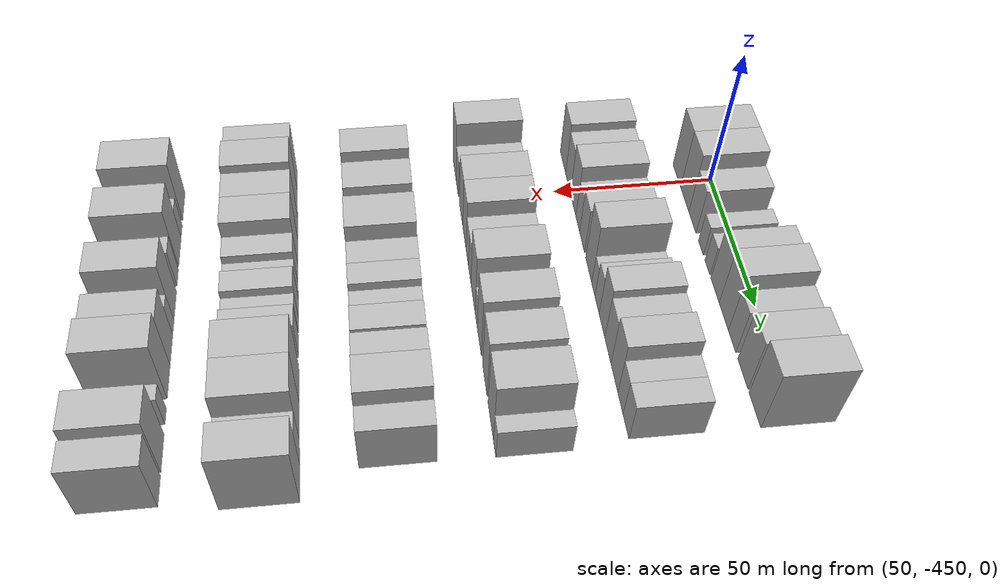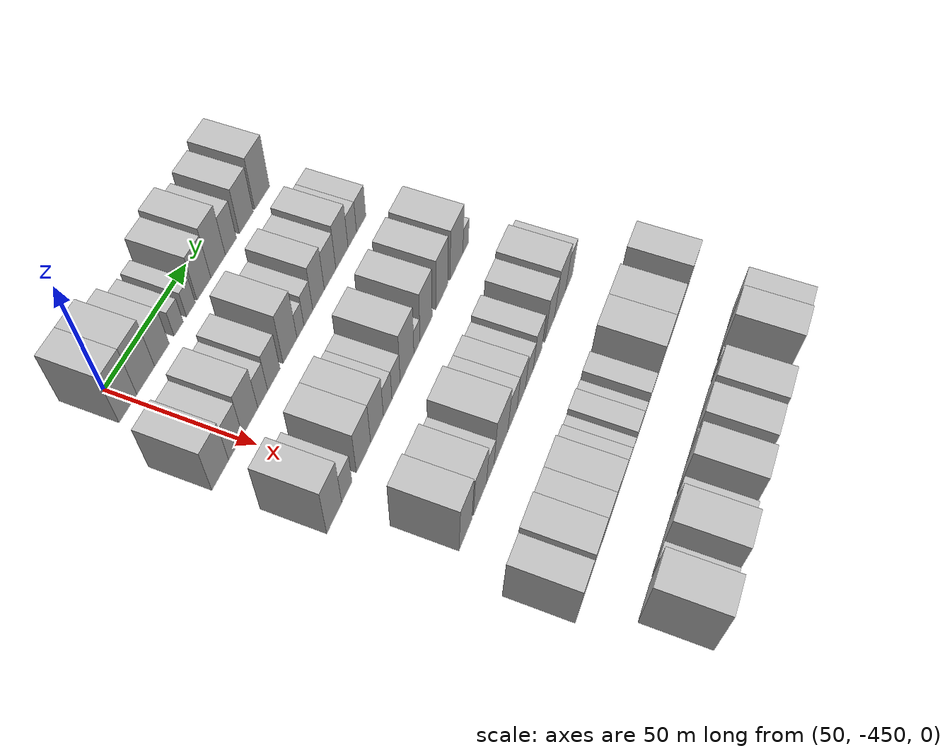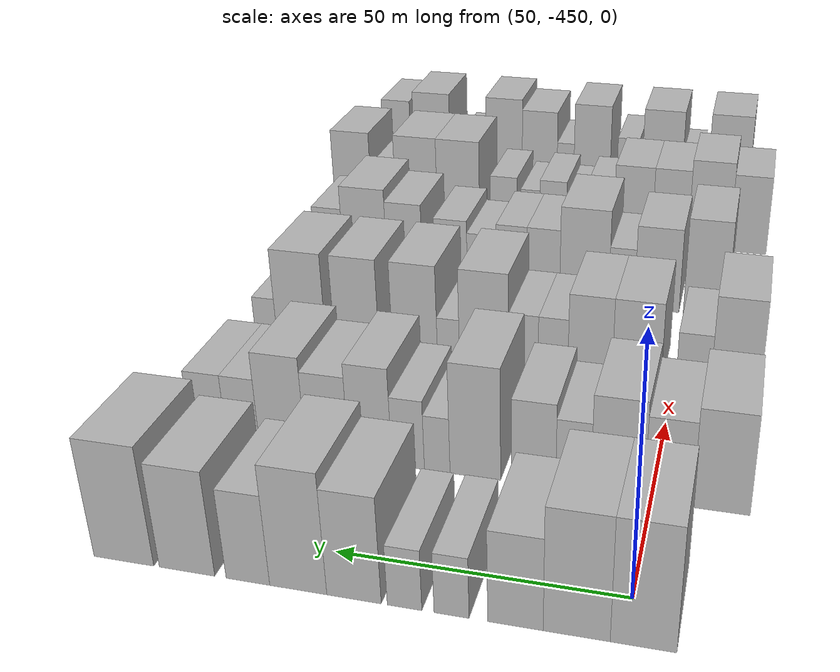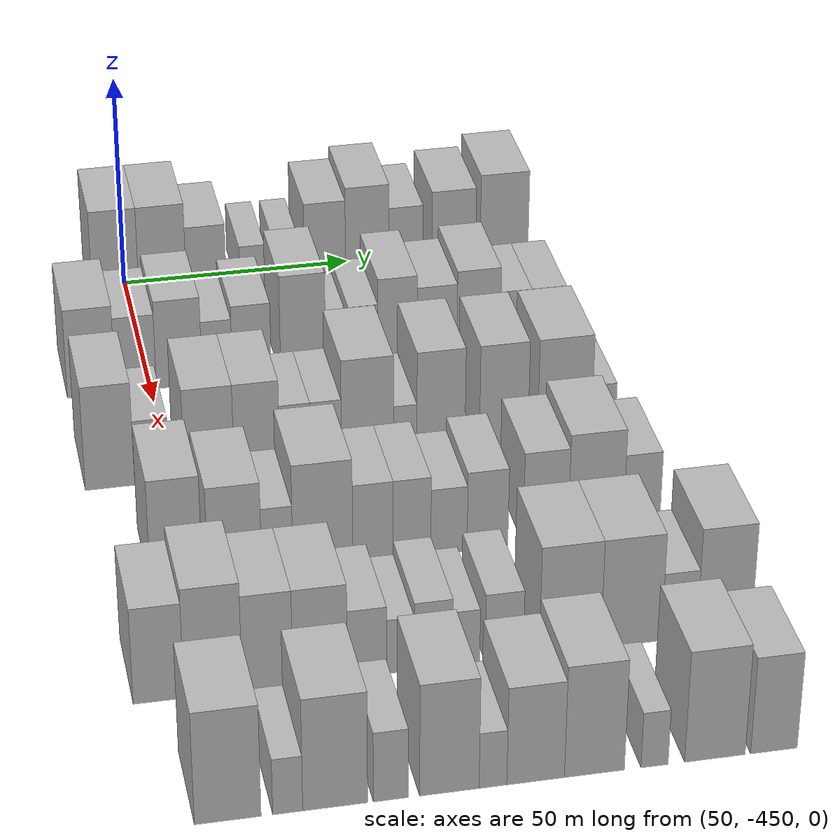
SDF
<sdf version="1.6">
 <world name="default">
  <model name="building_13">
   <static>1</static>
   <pose>50.0000 -453.0136 0 0.000000 0.000000 0.000000</pose>
   <link name="link">
    <pose>0 0 12.00 0 0 0</pose>
    <collision name="collision"><geometry><box><size>20.0000 10.1703 24.0000</size></box></geometry></collision>
    <visual name="visual">
     <cast_shadows>0</cast_shadows>
     <geometry><box><size>20.0000 10.1703 24.0000</size></box></geometry>
     <material>
      <script>
       <uri>model://HANNAS_wall/materials/scripts</uri>
       <uri>model://HANNAS_wall/materials/textures</uri>
       <name>vrc/HANNAS_wall</name>
      </script>
     </material>
    </visual>
   </link>
  </model>
  <model name="building_14">
   <static>1</static>
   <pose>50.0000 -442.7183 0 0.000000 0.000000 0.000000</pose>
   <link name="link">
    <pose>0 0 12.00 0 0 0</pose>
    <collision name="collision"><geometry><box><size>20.0000 10.4204 24.0000</size></box></geometry></collision>
    <visual name="visual">
     <cast_shadows>0</cast_shadows>
     <geometry><box><size>20.0000 10.4204 24.0000</size></box></geometry>
     <material>
      <script>
       <uri>model://HANNAS_wall/materials/scripts</uri>
       <uri>model://HANNAS_wall/materials/textures</uri>
       <name>vrc/HANNAS_wall</name>
      </script>
     </material>
    </visual>
   </link>
  </model>
  <model name="building_15">
   <static>1</static>
   <pose>50.0000 -433.0981 0 0.000000 0.000000 0.000000</pose>
   <link name="link">
    <pose>0 0 9.00 0 0 0</pose>
    <collision name="collision"><geometry><box><size>20.0000 8.8200 18.0000</size></box></geometry></collision>
    <visual name="visual">
     <cast_shadows>0</cast_shadows>
     <geometry><box><size>20.0000 8.8200 18.0000</size></box></geometry>
     <material>
      <script>
       <uri>model://HANNAS_wall/materials/scripts</uri>
       <uri>model://HANNAS_wall/materials/textures</uri>
       <name>vrc/HANNAS_wall</name>
      </script>
     </material>
    </visual>
   </link>
  </model>
  <model name="building_16">
   <static>1</static>
   <pose>50.0000 -422.8419 0 0.000000 0.000000 0.000000</pose>
   <link name="link">
    <pose>0 0 6.00 0 0 0</pose>
    <collision name="collision"><geometry><box><size>20.0000 5.6923 12.0000</size></box></geometry></collision>
    <visual name="visual">
     <cast_shadows>0</cast_shadows>
     <geometry><box><size>20.0000 5.6923 12.0000</size></box></geometry>
     <material>
      <script>
       <uri>model://HANNAS_wall/materials/scripts</uri>
       <uri>model://HANNAS_wall/materials/textures</uri>
       <name>vrc/HANNAS_wall</name>
      </script>
     </material>
    </visual>
   </link>
  </model>
  <model name="building_17">
   <static>1</static>
   <pose>50.0000 -415.1383 0 0.000000 0.000000 0.000000</pose>
   <link name="link">
    <pose>0 0 6.00 0 0 0</pose>
    <collision name="collision"><geometry><box><size>20.0000 5.7149 12.0000</size></box></geometry></collision>
    <visual name="visual">
     <cast_shadows>0</cast_shadows>
     <geometry><box><size>20.0000 5.7149 12.0000</size></box></geometry>
     <material>
      <script>
       <uri>model://HANNAS_wall/materials/scripts</uri>
       <uri>model://HANNAS_wall/materials/textures</uri>
       <name>vrc/HANNAS_wall</name>
      </script>
     </material>
    </visual>
   </link>
  </model>
  <model name="building_18">
   <static>1</static>
   <pose>50.0000 -406.6968 0 0.000000 0.000000 0.000000</pose>
   <link name="link">
    <pose>0 0 10.50 0 0 0</pose>
    <collision name="collision"><geometry><box><size>20.0000 9.1681 21.0000</size></box></geometry></collision>
    <visual name="visual">
     <cast_shadows>0</cast_shadows>
     <geometry><box><size>20.0000 9.1681 21.0000</size></box></geometry>
     <material>
      <script>
       <uri>model://HANNAS_wall/materials/scripts</uri>
       <uri>model://HANNAS_wall/materials/textures</uri>
       <name>vrc/HANNAS_wall</name>
      </script>
     </material>
    </visual>
   </link>
  </model>
  <model name="building_19">
   <static>1</static>
   <pose>50.0000 -397.2139 0 0.000000 0.000000 0.000000</pose>
   <link name="link">
    <pose>0 0 12.00 0 0 0</pose>
    <collision name="collision"><geometry><box><size>20.0000 9.7977 24.0000</size></box></geometry></collision>
    <visual name="visual">
     <cast_shadows>0</cast_shadows>
     <geometry><box><size>20.0000 9.7977 24.0000</size></box></geometry>
     <material>
      <script>
       <uri>model://HANNAS_wall/materials/scripts</uri>
       <uri>model://HANNAS_wall/materials/textures</uri>
       <name>vrc/HANNAS_wall</name>
      </script>
     </material>
    </visual>
   </link>
  </model>
  <model name="building_20">
   <static>1</static>
   <pose>50.0000 -388.5023 0 0.000000 0.000000 0.000000</pose>
   <link name="link">
    <pose>0 0 9.00 0 0 0</pose>
    <collision name="collision"><geometry><box><size>20.0000 7.6254 18.0000</size></box></geometry></collision>
    <visual name="visual">
     <cast_shadows>0</cast_shadows>
     <geometry><box><size>20.0000 7.6254 18.0000</size></box></geometry>
     <material>
      <script>
       <uri>model://HANNAS_wall/materials/scripts</uri>
       <uri>model://HANNAS_wall/materials/textures</uri>
       <name>vrc/HANNAS_wall</name>
      </script>
     </material>
    </visual>
   </link>
  </model>
  <model name="building_21">
   <static>1</static>
   <pose>50.0000 -377.7270 0 0.000000 0.000000 0.000000</pose>
   <link name="link">
    <pose>0 0 10.50 0 0 0</pose>
    <collision name="collision"><geometry><box><size>20.0000 9.9251 21.0000</size></box></geometry></collision>
    <visual name="visual">
     <cast_shadows>0</cast_shadows>
     <geometry><box><size>20.0000 9.9251 21.0000</size></box></geometry>
     <material>
      <script>
       <uri>model://HANNAS_wall/materials/scripts</uri>
       <uri>model://HANNAS_wall/materials/textures</uri>
       <name>vrc/HANNAS_wall</name>
      </script>
     </material>
    </visual>
   </link>
  </model>
  <model name="building_22">
   <static>1</static>
   <pose>50.0000 -366.3055 0 0.000000 0.000000 0.000000</pose>
   <link name="link">
    <pose>0 0 12.00 0 0 0</pose>
    <collision name="collision"><geometry><box><size>20.0000 10.9180 24.0000</size></box></geometry></collision>
    <visual name="visual">
     <cast_shadows>0</cast_shadows>
     <geometry><box><size>20.0000 10.9180 24.0000</size></box></geometry>
     <material>
      <script>
       <uri>model://HANNAS_wall/materials/scripts</uri>
       <uri>model://HANNAS_wall/materials/textures</uri>
       <name>vrc/HANNAS_wall</name>
      </script>
     </material>
    </visual>
   </link>
  </model>
  <model name="building_139">
   <static>1</static>
   <pose>85.0000 -462.3972 0 0.000000 0.000000 0.000000</pose>
   <link name="link">
    <pose>0 0 10.50 0 0 0</pose>
    <collision name="collision"><geometry><box><size>20.0000 10.0601 21.0000</size></box></geometry></collision>
    <visual name="visual">
     <cast_shadows>0</cast_shadows>
     <geometry><box><size>20.0000 10.0601 21.0000</size></box></geometry>
     <material>
      <script>
       <uri>model://HANNAS_wall/materials/scripts</uri>
       <uri>model://HANNAS_wall/materials/textures</uri>
       <name>vrc/HANNAS_wall</name>
      </script>
     </material>
    </visual>
   </link>
  </model>
  <model name="building_140">
   <static>1</static>
   <pose>85.0000 -453.0667 0 0.000000 0.000000 0.000000</pose>
   <link name="link">
    <pose>0 0 9.00 0 0 0</pose>
    <collision name="collision"><geometry><box><size>20.0000 8.6009 18.0000</size></box></geometry></collision>
    <visual name="visual">
     <cast_shadows>0</cast_shadows>
     <geometry><box><size>20.0000 8.6009 18.0000</size></box></geometry>
     <material>
      <script>
       <uri>model://HANNAS_wall/materials/scripts</uri>
       <uri>model://HANNAS_wall/materials/textures</uri>
       <name>vrc/HANNAS_wall</name>
      </script>
     </material>
    </visual>
   </link>
  </model>
  <model name="building_141">
   <static>1</static>
   <pose>85.0000 -443.9411 0 0.000000 0.000000 0.000000</pose>
   <link name="link">
    <pose>0 0 10.50 0 0 0</pose>
    <collision name="collision"><geometry><box><size>20.0000 9.6503 21.0000</size></box></geometry></collision>
    <visual name="visual">
     <cast_shadows>0</cast_shadows>
     <geometry><box><size>20.0000 9.6503 21.0000</size></box></geometry>
     <material>
      <script>
       <uri>model://HANNAS_wall/materials/scripts</uri>
       <uri>model://HANNAS_wall/materials/textures</uri>
       <name>vrc/HANNAS_wall</name>
      </script>
     </material>
    </visual>
   </link>
  </model>
  <model name="building_142">
   <static>1</static>
   <pose>85.0000 -435.9030 0 0.000000 0.000000 0.000000</pose>
   <link name="link">
    <pose>0 0 7.50 0 0 0</pose>
    <collision name="collision"><geometry><box><size>20.0000 6.4260 15.0000</size></box></geometry></collision>
    <visual name="visual">
     <cast_shadows>0</cast_shadows>
     <geometry><box><size>20.0000 6.4260 15.0000</size></box></geometry>
     <material>
      <script>
       <uri>model://HANNAS_wall/materials/scripts</uri>
       <uri>model://HANNAS_wall/materials/textures</uri>
       <name>vrc/HANNAS_wall</name>
      </script>
     </material>
    </visual>
   </link>
  </model>
  <model name="building_143">
   <static>1</static>
   <pose>85.0000 -428.5679 0 0.000000 0.000000 0.000000</pose>
   <link name="link">
    <pose>0 0 9.00 0 0 0</pose>
    <collision name="collision"><geometry><box><size>20.0000 8.2441 18.0000</size></box></geometry></collision>
    <visual name="visual">
     <cast_shadows>0</cast_shadows>
     <geometry><box><size>20.0000 8.2441 18.0000</size></box></geometry>
     <material>
      <script>
       <uri>model://HANNAS_wall/materials/scripts</uri>
       <uri>model://HANNAS_wall/materials/textures</uri>
       <name>vrc/HANNAS_wall</name>
      </script>
     </material>
    </visual>
   </link>
  </model>
  <model name="building_144">
   <static>1</static>
   <pose>85.0000 -417.6438 0 0.000000 0.000000 0.000000</pose>
   <link name="link">
    <pose>0 0 12.00 0 0 0</pose>
    <collision name="collision"><geometry><box><size>20.0000 9.6042 24.0000</size></box></geometry></collision>
    <visual name="visual">
     <cast_shadows>0</cast_shadows>
     <geometry><box><size>20.0000 9.6042 24.0000</size></box></geometry>
     <material>
      <script>
       <uri>model://HANNAS_wall/materials/scripts</uri>
       <uri>model://HANNAS_wall/materials/textures</uri>
       <name>vrc/HANNAS_wall</name>
      </script>
     </material>
    </visual>
   </link>
  </model>
  <model name="building_145">
   <static>1</static>
   <pose>85.0000 -410.3816 0 0.000000 0.000000 0.000000</pose>
   <link name="link">
    <pose>0 0 6.00 0 0 0</pose>
    <collision name="collision"><geometry><box><size>20.0000 4.9201 12.0000</size></box></geometry></collision>
    <visual name="visual">
     <cast_shadows>0</cast_shadows>
     <geometry><box><size>20.0000 4.9201 12.0000</size></box></geometry>
     <material>
      <script>
       <uri>model://HANNAS_wall/materials/scripts</uri>
       <uri>model://HANNAS_wall/materials/textures</uri>
       <name>vrc/HANNAS_wall</name>
      </script>
     </material>
    </visual>
   </link>
  </model>
  <model name="building_146">
   <static>1</static>
   <pose>85.0000 -404.7679 0 0.000000 0.000000 0.000000</pose>
   <link name="link">
    <pose>0 0 7.50 0 0 0</pose>
    <collision name="collision"><geometry><box><size>20.0000 6.3074 15.0000</size></box></geometry></collision>
    <visual name="visual">
     <cast_shadows>0</cast_shadows>
     <geometry><box><size>20.0000 6.3074 15.0000</size></box></geometry>
     <material>
      <script>
       <uri>model://HANNAS_wall/materials/scripts</uri>
       <uri>model://HANNAS_wall/materials/textures</uri>
       <name>vrc/HANNAS_wall</name>
      </script>
     </material>
    </visual>
   </link>
  </model>
  <model name="building_147">
   <static>1</static>
   <pose>85.0000 -397.3944 0 0.000000 0.000000 0.000000</pose>
   <link name="link">
    <pose>0 0 10.50 0 0 0</pose>
    <collision name="collision"><geometry><box><size>20.0000 8.4396 21.0000</size></box></geometry></collision>
    <visual name="visual">
     <cast_shadows>0</cast_shadows>
     <geometry><box><size>20.0000 8.4396 21.0000</size></box></geometry>
     <material>
      <script>
       <uri>model://HANNAS_wall/materials/scripts</uri>
       <uri>model://HANNAS_wall/materials/textures</uri>
       <name>vrc/HANNAS_wall</name>
      </script>
     </material>
    </visual>
   </link>
  </model>
  <model name="building_148">
   <static>1</static>
   <pose>85.0000 -388.8585 0 0.000000 0.000000 0.000000</pose>
   <link name="link">
    <pose>0 0 9.00 0 0 0</pose>
    <collision name="collision"><geometry><box><size>20.0000 8.6321 18.0000</size></box></geometry></collision>
    <visual name="visual">
     <cast_shadows>0</cast_shadows>
     <geometry><box><size>20.0000 8.6321 18.0000</size></box></geometry>
     <material>
      <script>
       <uri>model://HANNAS_wall/materials/scripts</uri>
       <uri>model://HANNAS_wall/materials/textures</uri>
       <name>vrc/HANNAS_wall</name>
      </script>
     </material>
    </visual>
   </link>
  </model>
  <model name="building_149">
   <static>1</static>
   <pose>85.0000 -379.8429 0 0.000000 0.000000 0.000000</pose>
   <link name="link">
    <pose>0 0 10.50 0 0 0</pose>
    <collision name="collision"><geometry><box><size>20.0000 9.3990 21.0000</size></box></geometry></collision>
    <visual name="visual">
     <cast_shadows>0</cast_shadows>
     <geometry><box><size>20.0000 9.3990 21.0000</size></box></geometry>
     <material>
      <script>
       <uri>model://HANNAS_wall/materials/scripts</uri>
       <uri>model://HANNAS_wall/materials/textures</uri>
       <name>vrc/HANNAS_wall</name>
      </script>
     </material>
    </visual>
   </link>
  </model>
  <model name="building_150">
   <static>1</static>
   <pose>85.0000 -371.7738 0 0.000000 0.000000 0.000000</pose>
   <link name="link">
    <pose>0 0 7.50 0 0 0</pose>
    <collision name="collision"><geometry><box><size>20.0000 6.7392 15.0000</size></box></geometry></collision>
    <visual name="visual">
     <cast_shadows>0</cast_shadows>
     <geometry><box><size>20.0000 6.7392 15.0000</size></box></geometry>
     <material>
      <script>
       <uri>model://HANNAS_wall/materials/scripts</uri>
       <uri>model://HANNAS_wall/materials/textures</uri>
       <name>vrc/HANNAS_wall</name>
      </script>
     </material>
    </visual>
   </link>
  </model>
  <model name="building_151">
   <static>1</static>
   <pose>85.0000 -364.6803 0 0.000000 0.000000 0.000000</pose>
   <link name="link">
    <pose>0 0 7.50 0 0 0</pose>
    <collision name="collision"><geometry><box><size>20.0000 7.4479 15.0000</size></box></geometry></collision>
    <visual name="visual">
     <cast_shadows>0</cast_shadows>
     <geometry><box><size>20.0000 7.4479 15.0000</size></box></geometry>
     <material>
      <script>
       <uri>model://HANNAS_wall/materials/scripts</uri>
       <uri>model://HANNAS_wall/materials/textures</uri>
       <name>vrc/HANNAS_wall</name>
      </script>
     </material>
    </visual>
   </link>
  </model>
  <model name="building_273">
   <static>1</static>
   <pose>120.0000 -462.6352 0 0.000000 0.000000 0.000000</pose>
   <link name="link">
    <pose>0 0 12.00 0 0 0</pose>
    <collision name="collision"><geometry><box><size>20.0000 9.8726 24.0000</size></box></geometry></collision>
    <visual name="visual">
     <cast_shadows>0</cast_shadows>
     <geometry><box><size>20.0000 9.8726 24.0000</size></box></geometry>
     <material>
      <script>
       <uri>model://HANNAS_wall/materials/scripts</uri>
       <uri>model://HANNAS_wall/materials/textures</uri>
       <name>vrc/HANNAS_wall</name>
      </script>
     </material>
    </visual>
   </link>
  </model>
  <model name="building_274">
   <static>1</static>
   <pose>120.0000 -454.2096 0 0.000000 0.000000 0.000000</pose>
   <link name="link">
    <pose>0 0 7.50 0 0 0</pose>
    <collision name="collision"><geometry><box><size>20.0000 6.9786 15.0000</size></box></geometry></collision>
    <visual name="visual">
     <cast_shadows>0</cast_shadows>
     <geometry><box><size>20.0000 6.9786 15.0000</size></box></geometry>
     <material>
      <script>
       <uri>model://HANNAS_wall/materials/scripts</uri>
       <uri>model://HANNAS_wall/materials/textures</uri>
       <name>vrc/HANNAS_wall</name>
      </script>
     </material>
    </visual>
   </link>
  </model>
  <model name="building_275">
   <static>1</static>
   <pose>120.0000 -442.7004 0 0.000000 0.000000 0.000000</pose>
   <link name="link">
    <pose>0 0 10.50 0 0 0</pose>
    <collision name="collision"><geometry><box><size>20.0000 10.0397 21.0000</size></box></geometry></collision>
    <visual name="visual">
     <cast_shadows>0</cast_shadows>
     <geometry><box><size>20.0000 10.0397 21.0000</size></box></geometry>
     <material>
      <script>
       <uri>model://HANNAS_wall/materials/scripts</uri>
       <uri>model://HANNAS_wall/materials/textures</uri>
       <name>vrc/HANNAS_wall</name>
      </script>
     </material>
    </visual>
   </link>
  </model>
  <model name="building_276">
   <static>1</static>
   <pose>120.0000 -433.0574 0 0.000000 0.000000 0.000000</pose>
   <link name="link">
    <pose>0 0 10.50 0 0 0</pose>
    <collision name="collision"><geometry><box><size>20.0000 9.2465 21.0000</size></box></geometry></collision>
    <visual name="visual">
     <cast_shadows>0</cast_shadows>
     <geometry><box><size>20.0000 9.2465 21.0000</size></box></geometry>
     <material>
      <script>
       <uri>model://HANNAS_wall/materials/scripts</uri>
       <uri>model://HANNAS_wall/materials/textures</uri>
       <name>vrc/HANNAS_wall</name>
      </script>
     </material>
    </visual>
   </link>
  </model>
  <model name="building_277">
   <static>1</static>
   <pose>120.0000 -425.2995 0 0.000000 0.000000 0.000000</pose>
   <link name="link">
    <pose>0 0 7.50 0 0 0</pose>
    <collision name="collision"><geometry><box><size>20.0000 6.2693 15.0000</size></box></geometry></collision>
    <visual name="visual">
     <cast_shadows>0</cast_shadows>
     <geometry><box><size>20.0000 6.2693 15.0000</size></box></geometry>
     <material>
      <script>
       <uri>model://HANNAS_wall/materials/scripts</uri>
       <uri>model://HANNAS_wall/materials/textures</uri>
       <name>vrc/HANNAS_wall</name>
      </script>
     </material>
    </visual>
   </link>
  </model>
  <model name="building_278">
   <static>1</static>
   <pose>120.0000 -419.0055 0 0.000000 0.000000 0.000000</pose>
   <link name="link">
    <pose>0 0 7.50 0 0 0</pose>
    <collision name="collision"><geometry><box><size>20.0000 6.3186 15.0000</size></box></geometry></collision>
    <visual name="visual">
     <cast_shadows>0</cast_shadows>
     <geometry><box><size>20.0000 6.3186 15.0000</size></box></geometry>
     <material>
      <script>
       <uri>model://HANNAS_wall/materials/scripts</uri>
       <uri>model://HANNAS_wall/materials/textures</uri>
       <name>vrc/HANNAS_wall</name>
      </script>
     </material>
    </visual>
   </link>
  </model>
  <model name="building_279">
   <static>1</static>
   <pose>120.0000 -410.5280 0 0.000000 0.000000 0.000000</pose>
   <link name="link">
    <pose>0 0 12.00 0 0 0</pose>
    <collision name="collision"><geometry><box><size>20.0000 10.6365 24.0000</size></box></geometry></collision>
    <visual name="visual">
     <cast_shadows>0</cast_shadows>
     <geometry><box><size>20.0000 10.6365 24.0000</size></box></geometry>
     <material>
      <script>
       <uri>model://HANNAS_wall/materials/scripts</uri>
       <uri>model://HANNAS_wall/materials/textures</uri>
       <name>vrc/HANNAS_wall</name>
      </script>
     </material>
    </visual>
   </link>
  </model>
  <model name="building_280">
   <static>1</static>
   <pose>120.0000 -402.7994 0 0.000000 0.000000 0.000000</pose>
   <link name="link">
    <pose>0 0 6.00 0 0 0</pose>
    <collision name="collision"><geometry><box><size>20.0000 4.8205 12.0000</size></box></geometry></collision>
    <visual name="visual">
     <cast_shadows>0</cast_shadows>
     <geometry><box><size>20.0000 4.8205 12.0000</size></box></geometry>
     <material>
      <script>
       <uri>model://HANNAS_wall/materials/scripts</uri>
       <uri>model://HANNAS_wall/materials/textures</uri>
       <name>vrc/HANNAS_wall</name>
      </script>
     </material>
    </visual>
   </link>
  </model>
  <model name="building_281">
   <static>1</static>
   <pose>120.0000 -395.4200 0 0.000000 0.000000 0.000000</pose>
   <link name="link">
    <pose>0 0 12.00 0 0 0</pose>
    <collision name="collision"><geometry><box><size>20.0000 9.9383 24.0000</size></box></geometry></collision>
    <visual name="visual">
     <cast_shadows>0</cast_shadows>
     <geometry><box><size>20.0000 9.9383 24.0000</size></box></geometry>
     <material>
      <script>
       <uri>model://HANNAS_wall/materials/scripts</uri>
       <uri>model://HANNAS_wall/materials/textures</uri>
       <name>vrc/HANNAS_wall</name>
      </script>
     </material>
    </visual>
   </link>
  </model>
  <model name="building_282">
   <static>1</static>
   <pose>120.0000 -382.3980 0 0.000000 0.000000 0.000000</pose>
   <link name="link">
    <pose>0 0 12.00 0 0 0</pose>
    <collision name="collision"><geometry><box><size>20.0000 10.1058 24.0000</size></box></geometry></collision>
    <visual name="visual">
     <cast_shadows>0</cast_shadows>
     <geometry><box><size>20.0000 10.1058 24.0000</size></box></geometry>
     <material>
      <script>
       <uri>model://HANNAS_wall/materials/scripts</uri>
       <uri>model://HANNAS_wall/materials/textures</uri>
       <name>vrc/HANNAS_wall</name>
      </script>
     </material>
    </visual>
   </link>
  </model>
  <model name="building_283">
   <static>1</static>
   <pose>120.0000 -369.6993 0 0.000000 0.000000 0.000000</pose>
   <link name="link">
    <pose>0 0 12.00 0 0 0</pose>
    <collision name="collision"><geometry><box><size>20.0000 11.2915 24.0000</size></box></geometry></collision>
    <visual name="visual">
     <cast_shadows>0</cast_shadows>
     <geometry><box><size>20.0000 11.2915 24.0000</size></box></geometry>
     <material>
      <script>
       <uri>model://HANNAS_wall/materials/scripts</uri>
       <uri>model://HANNAS_wall/materials/textures</uri>
       <name>vrc/HANNAS_wall</name>
      </script>
     </material>
    </visual>
   </link>
  </model>
  <model name="building_284">
   <static>1</static>
   <pose>120.0000 -361.5276 0 0.000000 0.000000 0.000000</pose>
   <link name="link">
    <pose>0 0 6.00 0 0 0</pose>
    <collision name="collision"><geometry><box><size>20.0000 5.0519 12.0000</size></box></geometry></collision>
    <visual name="visual">
     <cast_shadows>0</cast_shadows>
     <geometry><box><size>20.0000 5.0519 12.0000</size></box></geometry>
     <material>
      <script>
       <uri>model://HANNAS_wall/materials/scripts</uri>
       <uri>model://HANNAS_wall/materials/textures</uri>
       <name>vrc/HANNAS_wall</name>
      </script>
     </material>
    </visual>
   </link>
  </model>
  <model name="building_399">
   <static>1</static>
   <pose>155.0000 -454.0899 0 0.000000 0.000000 0.000000</pose>
   <link name="link">
    <pose>0 0 12.00 0 0 0</pose>
    <collision name="collision"><geometry><box><size>20.0000 9.9582 24.0000</size></box></geometry></collision>
    <visual name="visual">
     <cast_shadows>0</cast_shadows>
     <geometry><box><size>20.0000 9.9582 24.0000</size></box></geometry>
     <material>
      <script>
       <uri>model://HANNAS_wall/materials/scripts</uri>
       <uri>model://HANNAS_wall/materials/textures</uri>
       <name>vrc/HANNAS_wall</name>
      </script>
     </material>
    </visual>
   </link>
  </model>
  <model name="building_400">
   <static>1</static>
   <pose>155.0000 -442.9154 0 0.000000 0.000000 0.000000</pose>
   <link name="link">
    <pose>0 0 10.50 0 0 0</pose>
    <collision name="collision"><geometry><box><size>20.0000 10.3909 21.0000</size></box></geometry></collision>
    <visual name="visual">
     <cast_shadows>0</cast_shadows>
     <geometry><box><size>20.0000 10.3909 21.0000</size></box></geometry>
     <material>
      <script>
       <uri>model://HANNAS_wall/materials/scripts</uri>
       <uri>model://HANNAS_wall/materials/textures</uri>
       <name>vrc/HANNAS_wall</name>
      </script>
     </material>
    </visual>
   </link>
  </model>
  <model name="building_401">
   <static>1</static>
   <pose>155.0000 -434.7005 0 0.000000 0.000000 0.000000</pose>
   <link name="link">
    <pose>0 0 7.50 0 0 0</pose>
    <collision name="collision"><geometry><box><size>20.0000 6.0390 15.0000</size></box></geometry></collision>
    <visual name="visual">
     <cast_shadows>0</cast_shadows>
     <geometry><box><size>20.0000 6.0390 15.0000</size></box></geometry>
     <material>
      <script>
       <uri>model://HANNAS_wall/materials/scripts</uri>
       <uri>model://HANNAS_wall/materials/textures</uri>
       <name>vrc/HANNAS_wall</name>
      </script>
     </material>
    </visual>
   </link>
  </model>
  <model name="building_402">
   <static>1</static>
   <pose>155.0000 -425.8750 0 0.000000 0.000000 0.000000</pose>
   <link name="link">
    <pose>0 0 12.00 0 0 0</pose>
    <collision name="collision"><geometry><box><size>20.0000 11.6121 24.0000</size></box></geometry></collision>
    <visual name="visual">
     <cast_shadows>0</cast_shadows>
     <geometry><box><size>20.0000 11.6121 24.0000</size></box></geometry>
     <material>
      <script>
       <uri>model://HANNAS_wall/materials/scripts</uri>
       <uri>model://HANNAS_wall/materials/textures</uri>
       <name>vrc/HANNAS_wall</name>
      </script>
     </material>
    </visual>
   </link>
  </model>
  <model name="building_403">
   <static>1</static>
   <pose>155.0000 -416.1184 0 0.000000 0.000000 0.000000</pose>
   <link name="link">
    <pose>0 0 9.00 0 0 0</pose>
    <collision name="collision"><geometry><box><size>20.0000 7.9010 18.0000</size></box></geometry></collision>
    <visual name="visual">
     <cast_shadows>0</cast_shadows>
     <geometry><box><size>20.0000 7.9010 18.0000</size></box></geometry>
     <material>
      <script>
       <uri>model://HANNAS_wall/materials/scripts</uri>
       <uri>model://HANNAS_wall/materials/textures</uri>
       <name>vrc/HANNAS_wall</name>
      </script>
     </material>
    </visual>
   </link>
  </model>
  <model name="building_404">
   <static>1</static>
   <pose>155.0000 -408.4821 0 0.000000 0.000000 0.000000</pose>
   <link name="link">
    <pose>0 0 9.00 0 0 0</pose>
    <collision name="collision"><geometry><box><size>20.0000 7.3715 18.0000</size></box></geometry></collision>
    <visual name="visual">
     <cast_shadows>0</cast_shadows>
     <geometry><box><size>20.0000 7.3715 18.0000</size></box></geometry>
     <material>
      <script>
       <uri>model://HANNAS_wall/materials/scripts</uri>
       <uri>model://HANNAS_wall/materials/textures</uri>
       <name>vrc/HANNAS_wall</name>
      </script>
     </material>
    </visual>
   </link>
  </model>
  <model name="building_405">
   <static>1</static>
   <pose>155.0000 -401.2311 0 0.000000 0.000000 0.000000</pose>
   <link name="link">
    <pose>0 0 7.50 0 0 0</pose>
    <collision name="collision"><geometry><box><size>20.0000 7.1305 15.0000</size></box></geometry></collision>
    <visual name="visual">
     <cast_shadows>0</cast_shadows>
     <geometry><box><size>20.0000 7.1305 15.0000</size></box></geometry>
     <material>
      <script>
       <uri>model://HANNAS_wall/materials/scripts</uri>
       <uri>model://HANNAS_wall/materials/textures</uri>
       <name>vrc/HANNAS_wall</name>
      </script>
     </material>
    </visual>
   </link>
  </model>
  <model name="building_406">
   <static>1</static>
   <pose>155.0000 -393.6287 0 0.000000 0.000000 0.000000</pose>
   <link name="link">
    <pose>0 0 9.00 0 0 0</pose>
    <collision name="collision"><geometry><box><size>20.0000 8.0743 18.0000</size></box></geometry></collision>
    <visual name="visual">
     <cast_shadows>0</cast_shadows>
     <geometry><box><size>20.0000 8.0743 18.0000</size></box></geometry>
     <material>
      <script>
       <uri>model://HANNAS_wall/materials/scripts</uri>
       <uri>model://HANNAS_wall/materials/textures</uri>
       <name>vrc/HANNAS_wall</name>
      </script>
     </material>
    </visual>
   </link>
  </model>
  <model name="building_407">
   <static>1</static>
   <pose>155.0000 -382.1281 0 0.000000 0.000000 0.000000</pose>
   <link name="link">
    <pose>0 0 10.50 0 0 0</pose>
    <collision name="collision"><geometry><box><size>20.0000 8.9268 21.0000</size></box></geometry></collision>
    <visual name="visual">
     <cast_shadows>0</cast_shadows>
     <geometry><box><size>20.0000 8.9268 21.0000</size></box></geometry>
     <material>
      <script>
       <uri>model://HANNAS_wall/materials/scripts</uri>
       <uri>model://HANNAS_wall/materials/textures</uri>
       <name>vrc/HANNAS_wall</name>
      </script>
     </material>
    </visual>
   </link>
  </model>
  <model name="building_408">
   <static>1</static>
   <pose>155.0000 -372.1348 0 0.000000 0.000000 0.000000</pose>
   <link name="link">
    <pose>0 0 12.00 0 0 0</pose>
    <collision name="collision"><geometry><box><size>20.0000 11.0598 24.0000</size></box></geometry></collision>
    <visual name="visual">
     <cast_shadows>0</cast_shadows>
     <geometry><box><size>20.0000 11.0598 24.0000</size></box></geometry>
     <material>
      <script>
       <uri>model://HANNAS_wall/materials/scripts</uri>
       <uri>model://HANNAS_wall/materials/textures</uri>
       <name>vrc/HANNAS_wall</name>
      </script>
     </material>
    </visual>
   </link>
  </model>
  <model name="building_409">
   <static>1</static>
   <pose>155.0000 -362.9495 0 0.000000 0.000000 0.000000</pose>
   <link name="link">
    <pose>0 0 9.00 0 0 0</pose>
    <collision name="collision"><geometry><box><size>20.0000 7.3108 18.0000</size></box></geometry></collision>
    <visual name="visual">
     <cast_shadows>0</cast_shadows>
     <geometry><box><size>20.0000 7.3108 18.0000</size></box></geometry>
     <material>
      <script>
       <uri>model://HANNAS_wall/materials/scripts</uri>
       <uri>model://HANNAS_wall/materials/textures</uri>
       <name>vrc/HANNAS_wall</name>
      </script>
     </material>
    </visual>
   </link>
  </model>
  <model name="building_527">
   <static>1</static>
   <pose>190.0000 -462.1041 0 0.000000 0.000000 0.000000</pose>
   <link name="link">
    <pose>0 0 10.50 0 0 0</pose>
    <collision name="collision"><geometry><box><size>20.0000 9.1968 21.0000</size></box></geometry></collision>
    <visual name="visual">
     <cast_shadows>0</cast_shadows>
     <geometry><box><size>20.0000 9.1968 21.0000</size></box></geometry>
     <material>
      <script>
       <uri>model://HANNAS_wall/materials/scripts</uri>
       <uri>model://HANNAS_wall/materials/textures</uri>
       <name>vrc/HANNAS_wall</name>
      </script>
     </material>
    </visual>
   </link>
  </model>
  <model name="building_528">
   <static>1</static>
   <pose>190.0000 -452.2023 0 0.000000 0.000000 0.000000</pose>
   <link name="link">
    <pose>0 0 12.00 0 0 0</pose>
    <collision name="collision"><geometry><box><size>20.0000 10.6068 24.0000</size></box></geometry></collision>
    <visual name="visual">
     <cast_shadows>0</cast_shadows>
     <geometry><box><size>20.0000 10.6068 24.0000</size></box></geometry>
     <material>
      <script>
       <uri>model://HANNAS_wall/materials/scripts</uri>
       <uri>model://HANNAS_wall/materials/textures</uri>
       <name>vrc/HANNAS_wall</name>
      </script>
     </material>
    </visual>
   </link>
  </model>
  <model name="building_529">
   <static>1</static>
   <pose>190.0000 -442.2652 0 0.000000 0.000000 0.000000</pose>
   <link name="link">
    <pose>0 0 10.50 0 0 0</pose>
    <collision name="collision"><geometry><box><size>20.0000 9.2673 21.0000</size></box></geometry></collision>
    <visual name="visual">
     <cast_shadows>0</cast_shadows>
     <geometry><box><size>20.0000 9.2673 21.0000</size></box></geometry>
     <material>
      <script>
       <uri>model://HANNAS_wall/materials/scripts</uri>
       <uri>model://HANNAS_wall/materials/textures</uri>
       <name>vrc/HANNAS_wall</name>
      </script>
     </material>
    </visual>
   </link>
  </model>
  <model name="building_530">
   <static>1</static>
   <pose>190.0000 -432.6127 0 0.000000 0.000000 0.000000</pose>
   <link name="link">
    <pose>0 0 10.50 0 0 0</pose>
    <collision name="collision"><geometry><box><size>20.0000 10.0376 21.0000</size></box></geometry></collision>
    <visual name="visual">
     <cast_shadows>0</cast_shadows>
     <geometry><box><size>20.0000 10.0376 21.0000</size></box></geometry>
     <material>
      <script>
       <uri>model://HANNAS_wall/materials/scripts</uri>
       <uri>model://HANNAS_wall/materials/textures</uri>
       <name>vrc/HANNAS_wall</name>
      </script>
     </material>
    </visual>
   </link>
  </model>
  <model name="building_531">
   <static>1</static>
   <pose>190.0000 -423.9580 0 0.000000 0.000000 0.000000</pose>
   <link name="link">
    <pose>0 0 7.50 0 0 0</pose>
    <collision name="collision"><geometry><box><size>20.0000 7.2718 15.0000</size></box></geometry></collision>
    <visual name="visual">
     <cast_shadows>0</cast_shadows>
     <geometry><box><size>20.0000 7.2718 15.0000</size></box></geometry>
     <material>
      <script>
       <uri>model://HANNAS_wall/materials/scripts</uri>
       <uri>model://HANNAS_wall/materials/textures</uri>
       <name>vrc/HANNAS_wall</name>
      </script>
     </material>
    </visual>
   </link>
  </model>
  <model name="building_532">
   <static>1</static>
   <pose>190.0000 -417.7505 0 0.000000 0.000000 0.000000</pose>
   <link name="link">
    <pose>0 0 6.00 0 0 0</pose>
    <collision name="collision"><geometry><box><size>20.0000 5.1434 12.0000</size></box></geometry></collision>
    <visual name="visual">
     <cast_shadows>0</cast_shadows>
     <geometry><box><size>20.0000 5.1434 12.0000</size></box></geometry>
     <material>
      <script>
       <uri>model://HANNAS_wall/materials/scripts</uri>
       <uri>model://HANNAS_wall/materials/textures</uri>
       <name>vrc/HANNAS_wall</name>
      </script>
     </material>
    </visual>
   </link>
  </model>
  <model name="building_533">
   <static>1</static>
   <pose>190.0000 -411.6105 0 0.000000 0.000000 0.000000</pose>
   <link name="link">
    <pose>0 0 7.50 0 0 0</pose>
    <collision name="collision"><geometry><box><size>20.0000 7.1365 15.0000</size></box></geometry></collision>
    <visual name="visual">
     <cast_shadows>0</cast_shadows>
     <geometry><box><size>20.0000 7.1365 15.0000</size></box></geometry>
     <material>
      <script>
       <uri>model://HANNAS_wall/materials/scripts</uri>
       <uri>model://HANNAS_wall/materials/textures</uri>
       <name>vrc/HANNAS_wall</name>
      </script>
     </material>
    </visual>
   </link>
  </model>
  <model name="building_534">
   <static>1</static>
   <pose>190.0000 -405.4997 0 0.000000 0.000000 0.000000</pose>
   <link name="link">
    <pose>0 0 6.00 0 0 0</pose>
    <collision name="collision"><geometry><box><size>20.0000 5.0852 12.0000</size></box></geometry></collision>
    <visual name="visual">
     <cast_shadows>0</cast_shadows>
     <geometry><box><size>20.0000 5.0852 12.0000</size></box></geometry>
     <material>
      <script>
       <uri>model://HANNAS_wall/materials/scripts</uri>
       <uri>model://HANNAS_wall/materials/textures</uri>
       <name>vrc/HANNAS_wall</name>
      </script>
     </material>
    </visual>
   </link>
  </model>
  <model name="building_535">
   <static>1</static>
   <pose>190.0000 -398.3612 0 0.000000 0.000000 0.000000</pose>
   <link name="link">
    <pose>0 0 7.50 0 0 0</pose>
    <collision name="collision"><geometry><box><size>20.0000 7.1917 15.0000</size></box></geometry></collision>
    <visual name="visual">
     <cast_shadows>0</cast_shadows>
     <geometry><box><size>20.0000 7.1917 15.0000</size></box></geometry>
     <material>
      <script>
       <uri>model://HANNAS_wall/materials/scripts</uri>
       <uri>model://HANNAS_wall/materials/textures</uri>
       <name>vrc/HANNAS_wall</name>
      </script>
     </material>
    </visual>
   </link>
  </model>
  <model name="building_536">
   <static>1</static>
   <pose>190.0000 -385.9420 0 0.000000 0.000000 0.000000</pose>
   <link name="link">
    <pose>0 0 12.00 0 0 0</pose>
    <collision name="collision"><geometry><box><size>20.0000 11.6467 24.0000</size></box></geometry></collision>
    <visual name="visual">
     <cast_shadows>0</cast_shadows>
     <geometry><box><size>20.0000 11.6467 24.0000</size></box></geometry>
     <material>
      <script>
       <uri>model://HANNAS_wall/materials/scripts</uri>
       <uri>model://HANNAS_wall/materials/textures</uri>
       <name>vrc/HANNAS_wall</name>
      </script>
     </material>
    </visual>
   </link>
  </model>
  <model name="building_537">
   <static>1</static>
   <pose>190.0000 -374.3238 0 0.000000 0.000000 0.000000</pose>
   <link name="link">
    <pose>0 0 12.00 0 0 0</pose>
    <collision name="collision"><geometry><box><size>20.0000 11.5898 24.0000</size></box></geometry></collision>
    <visual name="visual">
     <cast_shadows>0</cast_shadows>
     <geometry><box><size>20.0000 11.5898 24.0000</size></box></geometry>
     <material>
      <script>
       <uri>model://HANNAS_wall/materials/scripts</uri>
       <uri>model://HANNAS_wall/materials/textures</uri>
       <name>vrc/HANNAS_wall</name>
      </script>
     </material>
    </visual>
   </link>
  </model>
  <model name="building_538">
   <static>1</static>
   <pose>190.0000 -365.1430 0 0.000000 0.000000 0.000000</pose>
   <link name="link">
    <pose>0 0 7.50 0 0 0</pose>
    <collision name="collision"><geometry><box><size>20.0000 6.7717 15.0000</size></box></geometry></collision>
    <visual name="visual">
     <cast_shadows>0</cast_shadows>
     <geometry><box><size>20.0000 6.7717 15.0000</size></box></geometry>
     <material>
      <script>
       <uri>model://HANNAS_wall/materials/scripts</uri>
       <uri>model://HANNAS_wall/materials/textures</uri>
       <name>vrc/HANNAS_wall</name>
      </script>
     </material>
    </visual>
   </link>
  </model>
  <model name="building_539">
   <static>1</static>
   <pose>190.0000 -356.4923 0 0.000000 0.000000 0.000000</pose>
   <link name="link">
    <pose>0 0 12.00 0 0 0</pose>
    <collision name="collision"><geometry><box><size>20.0000 10.5297 24.0000</size></box></geometry></collision>
    <visual name="visual">
     <cast_shadows>0</cast_shadows>
     <geometry><box><size>20.0000 10.5297 24.0000</size></box></geometry>
     <material>
      <script>
       <uri>model://HANNAS_wall/materials/scripts</uri>
       <uri>model://HANNAS_wall/materials/textures</uri>
       <name>vrc/HANNAS_wall</name>
      </script>
     </material>
    </visual>
   </link>
  </model>
  <model name="building_654">
   <static>1</static>
   <pose>225.0000 -454.8075 0 0.000000 0.000000 0.000000</pose>
   <link name="link">
    <pose>0 0 12.00 0 0 0</pose>
    <collision name="collision"><geometry><box><size>20.0000 11.5270 24.0000</size></box></geometry></collision>
    <visual name="visual">
     <cast_shadows>0</cast_shadows>
     <geometry><box><size>20.0000 11.5270 24.0000</size></box></geometry>
     <material>
      <script>
       <uri>model://HANNAS_wall/materials/scripts</uri>
       <uri>model://HANNAS_wall/materials/textures</uri>
       <name>vrc/HANNAS_wall</name>
      </script>
     </material>
    </visual>
   </link>
  </model>
  <model name="building_655">
   <static>1</static>
   <pose>225.0000 -444.4343 0 0.000000 0.000000 0.000000</pose>
   <link name="link">
    <pose>0 0 6.00 0 0 0</pose>
    <collision name="collision"><geometry><box><size>20.0000 5.2194 12.0000</size></box></geometry></collision>
    <visual name="visual">
     <cast_shadows>0</cast_shadows>
     <geometry><box><size>20.0000 5.2194 12.0000</size></box></geometry>
     <material>
      <script>
       <uri>model://HANNAS_wall/materials/scripts</uri>
       <uri>model://HANNAS_wall/materials/textures</uri>
       <name>vrc/HANNAS_wall</name>
      </script>
     </material>
    </visual>
   </link>
  </model>
  <model name="building_656">
   <static>1</static>
   <pose>225.0000 -436.1623 0 0.000000 0.000000 0.000000</pose>
   <link name="link">
    <pose>0 0 12.00 0 0 0</pose>
    <collision name="collision"><geometry><box><size>20.0000 11.3246 24.0000</size></box></geometry></collision>
    <visual name="visual">
     <cast_shadows>0</cast_shadows>
     <geometry><box><size>20.0000 11.3246 24.0000</size></box></geometry>
     <material>
      <script>
       <uri>model://HANNAS_wall/materials/scripts</uri>
       <uri>model://HANNAS_wall/materials/textures</uri>
       <name>vrc/HANNAS_wall</name>
      </script>
     </material>
    </visual>
   </link>
  </model>
  <model name="building_657">
   <static>1</static>
   <pose>225.0000 -426.4317 0 0.000000 0.000000 0.000000</pose>
   <link name="link">
    <pose>0 0 7.50 0 0 0</pose>
    <collision name="collision"><geometry><box><size>20.0000 6.1366 15.0000</size></box></geometry></collision>
    <visual name="visual">
     <cast_shadows>0</cast_shadows>
     <geometry><box><size>20.0000 6.1366 15.0000</size></box></geometry>
     <material>
      <script>
       <uri>model://HANNAS_wall/materials/scripts</uri>
       <uri>model://HANNAS_wall/materials/textures</uri>
       <name>vrc/HANNAS_wall</name>
      </script>
     </material>
    </visual>
   </link>
  </model>
  <model name="building_658">
   <static>1</static>
   <pose>225.0000 -416.1166 0 0.000000 0.000000 0.000000</pose>
   <link name="link">
    <pose>0 0 12.00 0 0 0</pose>
    <collision name="collision"><geometry><box><size>20.0000 10.4936 24.0000</size></box></geometry></collision>
    <visual name="visual">
     <cast_shadows>0</cast_shadows>
     <geometry><box><size>20.0000 10.4936 24.0000</size></box></geometry>
     <material>
      <script>
       <uri>model://HANNAS_wall/materials/scripts</uri>
       <uri>model://HANNAS_wall/materials/textures</uri>
       <name>vrc/HANNAS_wall</name>
      </script>
     </material>
    </visual>
   </link>
  </model>
  <model name="building_659">
   <static>1</static>
   <pose>225.0000 -408.4092 0 0.000000 0.000000 0.000000</pose>
   <link name="link">
    <pose>0 0 6.00 0 0 0</pose>
    <collision name="collision"><geometry><box><size>20.0000 4.9212 12.0000</size></box></geometry></collision>
    <visual name="visual">
     <cast_shadows>0</cast_shadows>
     <geometry><box><size>20.0000 4.9212 12.0000</size></box></geometry>
     <material>
      <script>
       <uri>model://HANNAS_wall/materials/scripts</uri>
       <uri>model://HANNAS_wall/materials/textures</uri>
       <name>vrc/HANNAS_wall</name>
      </script>
     </material>
    </visual>
   </link>
  </model>
  <model name="building_660">
   <static>1</static>
   <pose>225.0000 -400.8008 0 0.000000 0.000000 0.000000</pose>
   <link name="link">
    <pose>0 0 10.50 0 0 0</pose>
    <collision name="collision"><geometry><box><size>20.0000 10.2955 21.0000</size></box></geometry></collision>
    <visual name="visual">
     <cast_shadows>0</cast_shadows>
     <geometry><box><size>20.0000 10.2955 21.0000</size></box></geometry>
     <material>
      <script>
       <uri>model://HANNAS_wall/materials/scripts</uri>
       <uri>model://HANNAS_wall/materials/textures</uri>
       <name>vrc/HANNAS_wall</name>
      </script>
     </material>
    </visual>
   </link>
  </model>
  <model name="building_661">
   <static>1</static>
   <pose>225.0000 -390.2634 0 0.000000 0.000000 0.000000</pose>
   <link name="link">
    <pose>0 0 12.00 0 0 0</pose>
    <collision name="collision"><geometry><box><size>20.0000 10.7795 24.0000</size></box></geometry></collision>
    <visual name="visual">
     <cast_shadows>0</cast_shadows>
     <geometry><box><size>20.0000 10.7795 24.0000</size></box></geometry>
     <material>
      <script>
       <uri>model://HANNAS_wall/materials/scripts</uri>
       <uri>model://HANNAS_wall/materials/textures</uri>
       <name>vrc/HANNAS_wall</name>
      </script>
     </material>
    </visual>
   </link>
  </model>
  <model name="building_662">
   <static>1</static>
   <pose>225.0000 -379.4253 0 0.000000 0.000000 0.000000</pose>
   <link name="link">
    <pose>0 0 6.00 0 0 0</pose>
    <collision name="collision"><geometry><box><size>20.0000 4.8966 12.0000</size></box></geometry></collision>
    <visual name="visual">
     <cast_shadows>0</cast_shadows>
     <geometry><box><size>20.0000 4.8966 12.0000</size></box></geometry>
     <material>
      <script>
       <uri>model://HANNAS_wall/materials/scripts</uri>
       <uri>model://HANNAS_wall/materials/textures</uri>
       <name>vrc/HANNAS_wall</name>
      </script>
     </material>
    </visual>
   </link>
  </model>
  <model name="building_663">
   <static>1</static>
   <pose>225.0000 -368.4681 0 0.000000 0.000000 0.000000</pose>
   <link name="link">
    <pose>0 0 12.00 0 0 0</pose>
    <collision name="collision"><geometry><box><size>20.0000 11.0178 24.0000</size></box></geometry></collision>
    <visual name="visual">
     <cast_shadows>0</cast_shadows>
     <geometry><box><size>20.0000 11.0178 24.0000</size></box></geometry>
     <material>
      <script>
       <uri>model://HANNAS_wall/materials/scripts</uri>
       <uri>model://HANNAS_wall/materials/textures</uri>
       <name>vrc/HANNAS_wall</name>
      </script>
     </material>
    </visual>
   </link>
  </model>
  <model name="building_664">
   <static>1</static>
   <pose>225.0000 -357.6996 0 0.000000 0.000000 0.000000</pose>
   <link name="link">
    <pose>0 0 10.50 0 0 0</pose>
    <collision name="collision"><geometry><box><size>20.0000 8.5194 21.0000</size></box></geometry></collision>
    <visual name="visual">
     <cast_shadows>0</cast_shadows>
     <geometry><box><size>20.0000 8.5194 21.0000</size></box></geometry>
     <material>
      <script>
       <uri>model://HANNAS_wall/materials/scripts</uri>
       <uri>model://HANNAS_wall/materials/textures</uri>
       <name>vrc/HANNAS_wall</name>
      </script>
     </material>
    </visual>
   </link>
  </model>
 </world>
</sdf>
